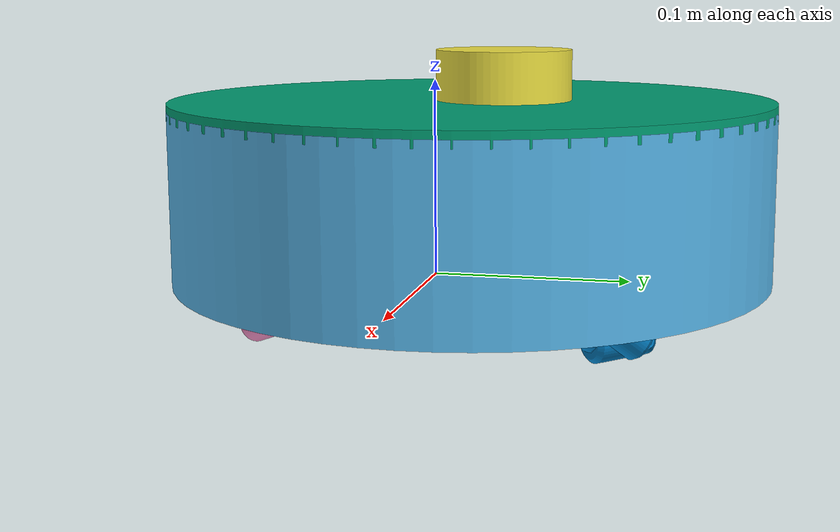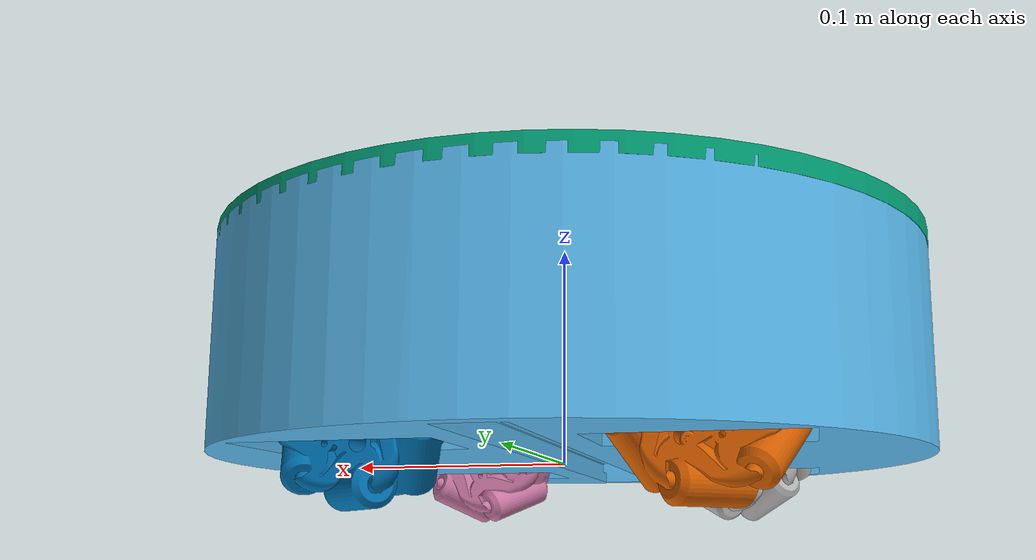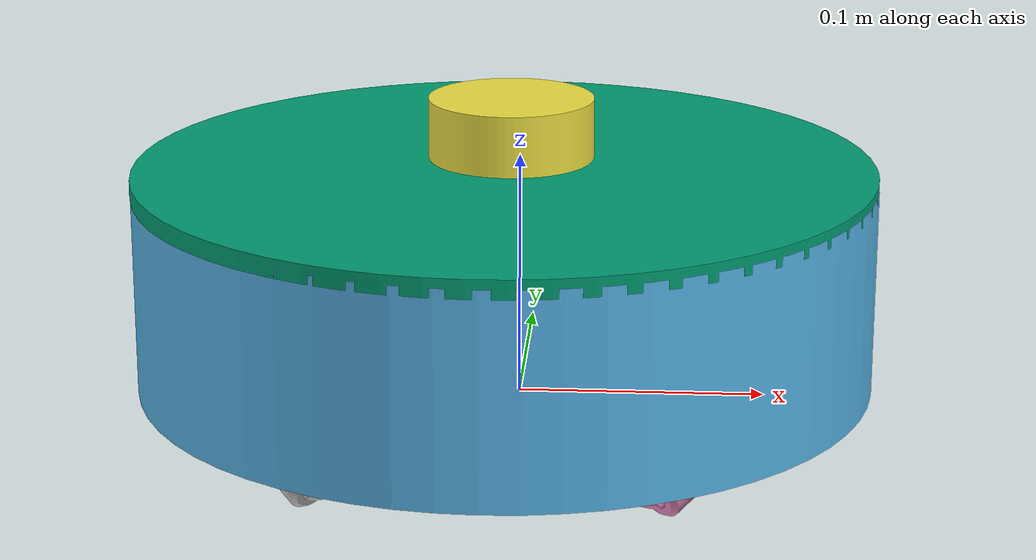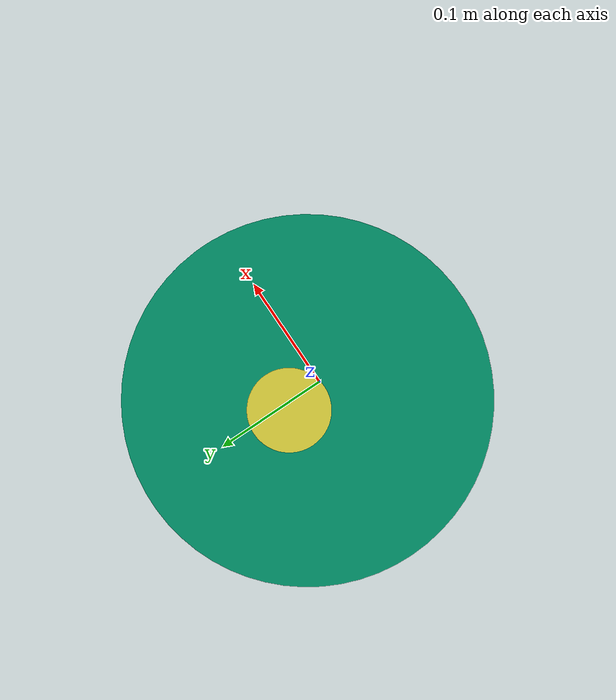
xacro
<?xml version="1.0"?>
<robot xmlns:xacro="http://www.ros.org/wiki/xacro"  name="mecanum_drive">
    <!-- Example link -->
    <xacro:include filename='robot_core.xacro' />
    <xacro:include filename="ros2_control.xacro"/>
    <xacro:mecanum_drive name="mecanum_drive"/>
</robot>

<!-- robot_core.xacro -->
<robot xmlns:xacro="http://www.ros.org/wiki/xacro" name="mecanum_drive">

  <!-- BASE LINK-->
<link name="base_link">
</link>

<!-- CHASSIS LINK -->
<joint name="chassis_joint" type="fixed">
  <parent link="base_link"/>
  <child link="chassis"/>
  <origin xyz="0 0 0" rpy="1.5709 0 0"/>
</joint>

<link name="chassis">
  <visual>
    <origin xyz="0.145 0 -0.17" rpy="0 -1.5709 0"/>
    <geometry>
      <mesh filename="package://mecanum_drive/meshes/chesi.STL" scale="0.001 0.001 0.001"/>
    </geometry>
  </visual>
  <collision>
    <origin xyz="0.145 0 -0.17" rpy="0 -1.5709 0"/>
    <geometry>
      <mesh filename="package://mecanum_drive/meshes/chesi.STL" scale="0.001 0.001 0.001"/>
    </geometry>
    <surface>
      <friction>
        <ode>
          <mu>2</mu>
          <mu2>2</mu2>
        </ode>
      </friction>
       <contact>
          <ode>
            <kp>500000.0</kp>
            <kd>100</kd>
          </ode>
        </contact>
    </surface>
  </collision>
  <inertial>
    <origin xyz="0 0 0" rpy="0 0 0"/>
    <mass value="10.0"/>
     <inertia
        ixx="0.0116" ixy="0.0" ixz="0.0"
        iyy="0.0116" iyz="0.0"
        izz="0.0465"/>
  </inertial>
</link>

<!-- plate LINK -->
<joint name="plate_joint" type="fixed">
  <parent link="chassis"/>
  <child link="plate_link"/>
  <origin xyz="-0.16 0.09 -0.17" rpy="1.57 0 0"/>
</joint>

<link name="plate_link">
  <visual>
    <origin xyz="0 0 0" rpy="0 0 0"/>
    <geometry>
      <mesh filename="package://mecanum_drive/meshes/plate.STL" scale="0.001 0.001 0.001"/>
    </geometry>
  </visual>
  <collision>
    <origin xyz="0 0 0" rpy="0 0 0"/>
    <geometry>
      <mesh filename="package://mecanum_drive/meshes/plate.STL" scale="0.001 0.001 0.001"/>
    </geometry>
    <surface>
      <friction>
        <ode>
          <mu>2</mu>
          <mu2>2</mu2>
        </ode>
      </friction>
       <contact>
          <ode>
            <kp>500000.0</kp>
            <kd>100</kd>
          </ode>
        </contact>
    </surface>
  </collision>
  <inertial>
    <origin xyz="0 0 0" rpy="0 0 0"/>
    <mass value="10.0"/>
     <inertia
        ixx="0.0116" ixy="0.0" ixz="0.0"
        iyy="0.0116" iyz="0.0"
        izz="0.0465"/>
  </inertial>
</link>

<!-- lidar LINK -->
<joint name="laser_joint" type="fixed">
  <parent link="base_link"/>
  <child link="laser_frame"/>
  <origin xyz="-0.04 0 0.09" rpy="0 0 0"/>
</joint>

<link name="laser_frame">
  <visual>
    <origin xyz="0 0 0" rpy="0 0 0"/>
    <geometry>
      <mesh filename="package://mecanum_drive/meshes/lidar.STL" scale="0.001 0.001 0.001"/>
    </geometry>
  </visual>
  <collision>
    <origin xyz="0 0 0" rpy="0 0 0"/>
    <geometry>
      <mesh filename="package://mecanum_drive/meshes/lidar.STL" scale="0.001 0.001 0.001"/>
    </geometry>
    <surface>
      <friction>
        <ode>
          <mu>2</mu>
          <mu2>2</mu2>
        </ode>
      </friction>
       <contact>
          <ode>
            <kp>500000.0</kp>
            <kd>100</kd>
          </ode>
        </contact>
    </surface>
  </collision>
  <inertial>
    <origin xyz="0 0 0" rpy="0 0 0"/>
    <mass value="10.0"/>
     <inertia
        ixx="0.0116" ixy="0.0" ixz="0.0"
        iyy="0.0116" iyz="0.0"
        izz="0.0465"/>
  </inertial>
</link>

<!-- FRONT LEFT WHEEL LINK -->
<joint name="front_left_wheel_joint" type="continuous">
  <parent link="chassis"/>
  <child link="front_left_wheel"/>
  <origin xyz="0.055 0.01 -0.075" rpy="4.7125 0 0"/>
  <axis xyz="0 1 0"/>
</joint>

<link name="front_left_wheel">
  <visual>
    <origin xyz="-0.036 0.045 -0.034" rpy="1.5709 0 1.5709"/>
    <geometry>
      <mesh filename="package://mecanum_drive/meshes/tyre.STL" scale="-0.001 0.001 0.001"/>
    </geometry>
  </visual>
  <collision>
    <origin xyz="-0.032 0.045 -0.034" rpy="1.5709 0 1.5709"/>
    <geometry>
      <mesh filename="package://mecanum_drive/meshes/tyre.STL" scale="-0.001 0.001 0.001"/>
    </geometry>
    <surface>
      <friction>
        <ode>
          <mu>2</mu>
          <mu2>2</mu2>
        </ode>
      </friction>
       <contact>
          <ode>
            <kp>500000.0</kp>
            <kd>100</kd>
          </ode>
        </contact>
    </surface>
  </collision>
  <inertial>
    <origin xyz="0 0 0" rpy="0 0 0"/>
    <mass value="0.5"/>
   <inertia
        ixx="0.001" ixy="0.0" ixz="0.0"
        iyy="0.001" iyz="0.0"
        izz="0.0012"/>
  </inertial>
</link>

<!-- REAR LEFT WHEEL LINK-->
<joint name="rear_left_wheel_joint" type="continuous">
  <parent link="chassis"/>
  <child link="rear_left_wheel"/>
  <origin xyz="-0.075 0.01 -0.075" rpy="4.7125 0 0"/>
  <axis xyz="0 1 0"/>
</joint>

<link name="rear_left_wheel">
  <visual>
    <origin xyz="-0.036 0.003 -0.034" rpy="1.5709 0 1.5709"/>
    <geometry>
      <mesh filename="package://mecanum_drive/meshes/tyre.STL" scale="0.001 0.001 0.001"/>
    </geometry>
  </visual>
  <collision>
    <origin xyz="-0.034 0.003 -0.034" rpy="1.5709 0 1.5709"/>
    <geometry>
      <mesh filename="package://mecanum_drive/meshes/tyre.STL" scale="0.001 0.001 0.001"/>
    </geometry>
    <surface>
      <friction>
        <ode>
          <mu>2</mu>
          <mu2>2</mu2>
        </ode>
      </friction>
       <contact>
          <ode>
            <kp>500000.0</kp>
            <kd>100</kd>
          </ode>
        </contact>
    </surface>
  </collision>
  <inertial>
    <origin xyz="0 0 0" rpy="0 0 0"/>
    <mass value="0.5"/>
    <inertia
        ixx="0.001" ixy="0.0" ixz="0.0"
        iyy="0.001" iyz="0.0"
        izz="0.0012"/>
  </inertial>
</link>

<!-- FRONT RIGHT WHEEL LINK-->
<joint name="front_right_wheel_joint" type="continuous">
  <parent link="chassis"/>
  <child link="front_right_wheel"/>
  <origin xyz="0.055 0.01 0.055" rpy="4.7125 0 0"/>
  <axis xyz="0 1 0"/>
</joint>

<link name="front_right_wheel">
  <visual>
    <origin xyz="-0.034 0.01 -0.034" rpy="0 0 -1.5709"/>
    <geometry>
      <mesh filename="package://mecanum_drive/meshes/tyre.STL" scale="0.001 0.001 0.001"/>
    </geometry>
  </visual>
  <collision>
    <origin xyz="-0.034 0.01 -0.034" rpy="0 0 -1.5709"/>
    <geometry>
      <mesh filename="package://mecanum_drive/meshes/tyre.STL" scale="0.001 0.001 0.001"/>
    </geometry>
    <surface>
      <friction>
        <ode>
          <mu>2</mu>
          <mu2>2</mu2>
        </ode>
      </friction>
       <contact>
          <ode>
            <kp>500000.0</kp>
            <kd>100</kd>
          </ode>
        </contact>
    </surface>
  </collision>
  <inertial>
    <origin xyz="0 0 0" rpy="0 0 0"/>
    <mass value="0.5"/>
    <inertia
        ixx="0.001" ixy="0.0" ixz="0.0"
        iyy="0.001" iyz="0.0"
        izz="0.0012"/>
  </inertial>
</link>

<!-- REAR RIGHT WHEEL LINK-->
<joint name="rear_right_wheel_joint" type="continuous">
  <parent link="chassis"/>
  <child link="rear_right_wheel"/>
  <origin xyz="-0.075 0.01 0.055" rpy="4.7125 0 0"/>
  <axis xyz="0 1 0"/>
</joint>

<link name="rear_right_wheel">
  <visual>
    <origin xyz="-0.034 -0.03 -0.034" rpy="0 0 -1.5709"/>
    <geometry>
      <mesh filename="package://mecanum_drive/meshes/tyre.STL" scale="-0.001 0.001 0.001"/>
    </geometry>
  </visual>
  <collision>
    <origin xyz="-0.03 -0.03 -0.034" rpy="0 0 -1.5709"/>
    <geometry>
      <mesh filename="package://mecanum_drive/meshes/tyre.STL" scale="-0.001 0.001 0.001"/>
    </geometry>
    <surface>
      <friction>
        <ode>
          <mu>2</mu>
          <mu2>2</mu2>
        </ode>
      </friction>
       <contact>
          <ode>
            <kp>500000.0</kp>
            <kd>100</kd>
          </ode>
        </contact>
    </surface>
  </collision>
  <inertial>
    <origin xyz="0 0 0" rpy="0 0 0"/>
    <mass value="0.5"/>
    <inertia
        ixx="0.001" ixy="0.0" ixz="0.0"
        iyy="0.001" iyz="0.0"
        izz="0.0012"/>
  </inertial>
</link>

</robot>
